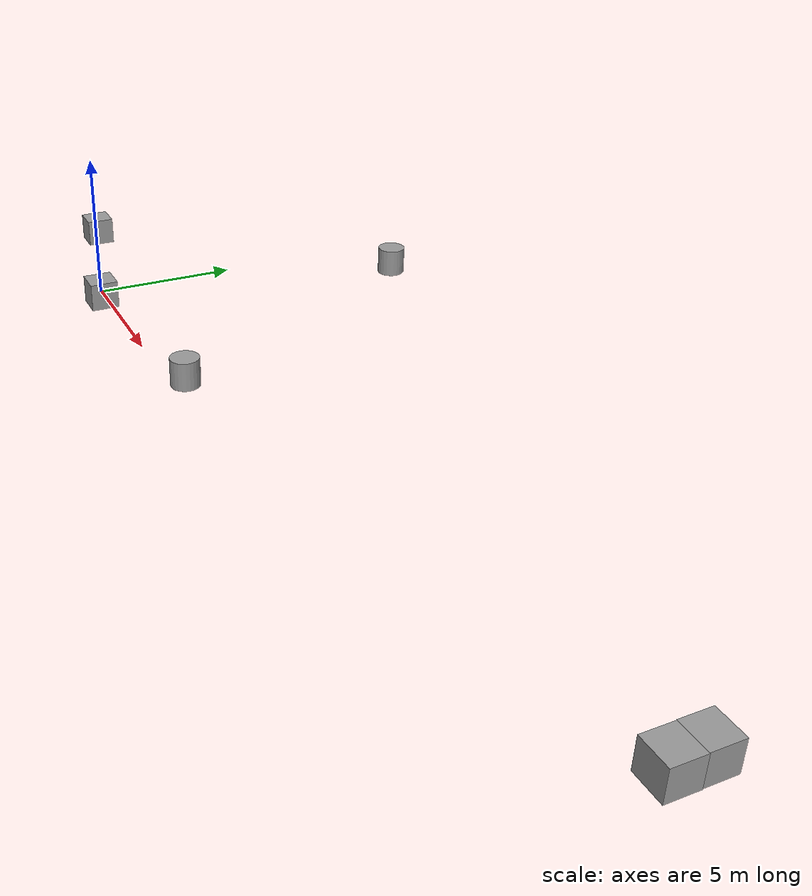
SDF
<?xml version='1.0'?>
<sdf version='1.6'>
  <model name='ex1.model'>
    <link name='link'>
      <inertial>
        <mass>1</mass>
        <inertia>
          <ixx>0.166667</ixx>
          <ixy>0</ixy>
          <ixz>0</ixz>
          <iyy>0.166667</iyy>
          <iyz>0</iyz>
          <izz>0.166667</izz>
        </inertia>
      </inertial>
      <self_collide>0</self_collide>
      <enable_wind>0</enable_wind>
      <kinematic>0</kinematic>
      <pose frame=''>0 0 0 0 -0 0</pose>
      <visual name='visual'>
        <geometry>
          <box>
            <size>1 1 1</size>
          </box>
        </geometry>
        <material>
          <script>
            <name>Gazebo/Grey</name>
            <uri>file://media/materials/scripts/gazebo.material</uri>
          </script>
        </material>
        <pose frame=''>0 0 0 0 -0 0</pose>
        <transparency>0</transparency>
        <cast_shadows>1</cast_shadows>
      </visual>
      <collision name='collision'>
        <laser_retro>0</laser_retro>
        <max_contacts>10</max_contacts>
        <pose frame=''>0 0 0 0 -0 0</pose>
        <geometry>
          <box>
            <size>1 1 1</size>
          </box>
        </geometry>
        <surface>
          <friction>
            <ode>
              <mu>1</mu>
              <mu2>1</mu2>
              <fdir1>0 0 0</fdir1>
              <slip1>0</slip1>
              <slip2>0</slip2>
            </ode>
            <torsional>
              <coefficient>1</coefficient>
              <patch_radius>0</patch_radius>
              <surface_radius>0</surface_radius>
              <use_patch_radius>1</use_patch_radius>
              <ode>
                <slip>0</slip>
              </ode>
            </torsional>
          </friction>
          <bounce>
            <restitution_coefficient>0</restitution_coefficient>
            <threshold>1e+06</threshold>
          </bounce>
          <contact>
            <collide_without_contact>0</collide_without_contact>
            <collide_without_contact_bitmask>1</collide_without_contact_bitmask>
            <collide_bitmask>1</collide_bitmask>
            <ode>
              <soft_cfm>0</soft_cfm>
              <soft_erp>0.2</soft_erp>
              <kp>1e+13</kp>
              <kd>1</kd>
              <max_vel>0.01</max_vel>
              <min_depth>0</min_depth>
            </ode>
            <bullet>
              <split_impulse>1</split_impulse>
              <split_impulse_penetration_threshold>-0.01</split_impulse_penetration_threshold>
              <soft_cfm>0</soft_cfm>
              <soft_erp>0.2</soft_erp>
              <kp>1e+13</kp>
              <kd>1</kd>
            </bullet>
          </contact>
        </surface>
      </collision>
    </link>
    <link name='link_0'>
      <inertial>
        <mass>1</mass>
        <inertia>
          <ixx>0.145833</ixx>
          <ixy>0</ixy>
          <ixz>0</ixz>
          <iyy>0.145833</iyy>
          <iyz>0</iyz>
          <izz>0.125</izz>
        </inertia>
      </inertial>
      <pose frame=''>1.61294 11.2922 0 0 -0 0</pose>
      <self_collide>0</self_collide>
      <enable_wind>0</enable_wind>
      <kinematic>0</kinematic>
      <visual name='visual'>
        <pose frame=''>0 0 0 0 -0 0</pose>
        <geometry>
          <cylinder>
            <radius>0.5</radius>
            <length>1</length>
          </cylinder>
        </geometry>
        <material>
          <lighting>1</lighting>
          <script>
            <uri>file://media/materials/scripts/gazebo.material</uri>
            <name>Gazebo/Grey</name>
          </script>
        </material>
        <transparency>0</transparency>
        <cast_shadows>1</cast_shadows>
      </visual>
      <collision name='collision'>
        <laser_retro>0</laser_retro>
        <max_contacts>10</max_contacts>
        <pose frame=''>0 0 0 0 -0 0</pose>
        <geometry>
          <cylinder>
            <radius>0.5</radius>
            <length>1</length>
          </cylinder>
        </geometry>
        <surface>
          <friction>
            <ode>
              <mu>1</mu>
              <mu2>1</mu2>
              <fdir1>0 0 0</fdir1>
              <slip1>0</slip1>
              <slip2>0</slip2>
            </ode>
            <torsional>
              <coefficient>1</coefficient>
              <patch_radius>0</patch_radius>
              <surface_radius>0</surface_radius>
              <use_patch_radius>1</use_patch_radius>
              <ode>
                <slip>0</slip>
              </ode>
            </torsional>
          </friction>
          <bounce>
            <restitution_coefficient>0</restitution_coefficient>
            <threshold>1e+06</threshold>
          </bounce>
          <contact>
            <collide_without_contact>0</collide_without_contact>
            <collide_without_contact_bitmask>1</collide_without_contact_bitmask>
            <collide_bitmask>1</collide_bitmask>
            <ode>
              <soft_cfm>0</soft_cfm>
              <soft_erp>0.2</soft_erp>
              <kp>1e+13</kp>
              <kd>1</kd>
              <max_vel>0.01</max_vel>
              <min_depth>0</min_depth>
            </ode>
            <bullet>
              <split_impulse>1</split_impulse>
              <split_impulse_penetration_threshold>-0.01</split_impulse_penetration_threshold>
              <soft_cfm>0</soft_cfm>
              <soft_erp>0.2</soft_erp>
              <kp>1e+13</kp>
              <kd>1</kd>
            </bullet>
          </contact>
        </surface>
      </collision>
    </link>
    <link name='link_1'>
      <inertial>
        <mass>1</mass>
        <inertia>
          <ixx>0.145833</ixx>
          <ixy>0</ixy>
          <ixz>0</ixz>
          <iyy>0.145833</iyy>
          <iyz>0</iyz>
          <izz>0.125</izz>
        </inertia>
      </inertial>
      <pose frame=''>7.25456 0.758957 0 0 -0 0</pose>
      <self_collide>0</self_collide>
      <enable_wind>0</enable_wind>
      <kinematic>0</kinematic>
      <visual name='visual'>
        <pose frame=''>0 0 0 0 -0 0</pose>
        <geometry>
          <cylinder>
            <radius>0.5</radius>
            <length>1</length>
          </cylinder>
        </geometry>
        <material>
          <lighting>1</lighting>
          <script>
            <uri>file://media/materials/scripts/gazebo.material</uri>
            <name>Gazebo/Grey</name>
          </script>
        </material>
        <transparency>0</transparency>
        <cast_shadows>1</cast_shadows>
      </visual>
      <collision name='collision'>
        <laser_retro>0</laser_retro>
        <max_contacts>10</max_contacts>
        <pose frame=''>0 0 0 0 -0 0</pose>
        <geometry>
          <cylinder>
            <radius>0.5</radius>
            <length>1</length>
          </cylinder>
        </geometry>
        <surface>
          <friction>
            <ode>
              <mu>1</mu>
              <mu2>1</mu2>
              <fdir1>0 0 0</fdir1>
              <slip1>0</slip1>
              <slip2>0</slip2>
            </ode>
            <torsional>
              <coefficient>1</coefficient>
              <patch_radius>0</patch_radius>
              <surface_radius>0</surface_radius>
              <use_patch_radius>1</use_patch_radius>
              <ode>
                <slip>0</slip>
              </ode>
            </torsional>
          </friction>
          <bounce>
            <restitution_coefficient>0</restitution_coefficient>
            <threshold>1e+06</threshold>
          </bounce>
          <contact>
            <collide_without_contact>0</collide_without_contact>
            <collide_without_contact_bitmask>1</collide_without_contact_bitmask>
            <collide_bitmask>1</collide_bitmask>
            <ode>
              <soft_cfm>0</soft_cfm>
              <soft_erp>0.2</soft_erp>
              <kp>1e+13</kp>
              <kd>1</kd>
              <max_vel>0.01</max_vel>
              <min_depth>0</min_depth>
            </ode>
            <bullet>
              <split_impulse>1</split_impulse>
              <split_impulse_penetration_threshold>-0.01</split_impulse_penetration_threshold>
              <soft_cfm>0</soft_cfm>
              <soft_erp>0.2</soft_erp>
              <kp>1e+13</kp>
              <kd>1</kd>
            </bullet>
          </contact>
        </surface>
      </collision>
    </link>
    <link name='link_2'>
      <inertial>
        <mass>1</mass>
        <inertia>
          <ixx>0.166667</ixx>
          <ixy>0</ixy>
          <ixz>0</ixz>
          <iyy>0.166667</iyy>
          <iyz>0</iyz>
          <izz>0.166667</izz>
        </inertia>
      </inertial>
      <pose frame=''>27.1518 5.11795 0 0 -0 0</pose>
      <self_collide>0</self_collide>
      <enable_wind>0</enable_wind>
      <kinematic>0</kinematic>
      <visual name='visual'>
        <pose frame=''>0 0 0 0 -0 0</pose>
        <geometry>
          <box>
            <size>1 1 1</size>
          </box>
        </geometry>
        <material>
          <lighting>1</lighting>
          <script>
            <uri>file://media/materials/scripts/gazebo.material</uri>
            <name>Gazebo/Grey</name>
          </script>
        </material>
        <transparency>0</transparency>
        <cast_shadows>1</cast_shadows>
      </visual>
      <collision name='collision'>
        <laser_retro>0</laser_retro>
        <max_contacts>10</max_contacts>
        <pose frame=''>0 0 0 0 -0 0</pose>
        <geometry>
          <box>
            <size>1 1 1</size>
          </box>
        </geometry>
        <surface>
          <friction>
            <ode>
              <mu>1</mu>
              <mu2>1</mu2>
              <fdir1>0 0 0</fdir1>
              <slip1>0</slip1>
              <slip2>0</slip2>
            </ode>
            <torsional>
              <coefficient>1</coefficient>
              <patch_radius>0</patch_radius>
              <surface_radius>0</surface_radius>
              <use_patch_radius>1</use_patch_radius>
              <ode>
                <slip>0</slip>
              </ode>
            </torsional>
          </friction>
          <bounce>
            <restitution_coefficient>0</restitution_coefficient>
            <threshold>1e+06</threshold>
          </bounce>
          <contact>
            <collide_without_contact>0</collide_without_contact>
            <collide_without_contact_bitmask>1</collide_without_contact_bitmask>
            <collide_bitmask>1</collide_bitmask>
            <ode>
              <soft_cfm>0</soft_cfm>
              <soft_erp>0.2</soft_erp>
              <kp>1e+13</kp>
              <kd>1</kd>
              <max_vel>0.01</max_vel>
              <min_depth>0</min_depth>
            </ode>
            <bullet>
              <split_impulse>1</split_impulse>
              <split_impulse_penetration_threshold>-0.01</split_impulse_penetration_threshold>
              <soft_cfm>0</soft_cfm>
              <soft_erp>0.2</soft_erp>
              <kp>1e+13</kp>
              <kd>1</kd>
            </bullet>
          </contact>
        </surface>
      </collision>
    </link>
    <link name='link_3'>
      <inertial>
        <mass>1</mass>
        <inertia>
          <ixx>0.166667</ixx>
          <ixy>0</ixy>
          <ixz>0</ixz>
          <iyy>0.166667</iyy>
          <iyz>0</iyz>
          <izz>0.166667</izz>
        </inertia>
      </inertial>
      <pose frame=''>27.1665 4.13017 0 0 -0 0</pose>
      <self_collide>0</self_collide>
      <enable_wind>0</enable_wind>
      <kinematic>0</kinematic>
      <visual name='visual'>
        <pose frame=''>0 0 0 0 -0 0</pose>
        <geometry>
          <box>
            <size>1 1 1</size>
          </box>
        </geometry>
        <material>
          <lighting>1</lighting>
          <script>
            <uri>file://media/materials/scripts/gazebo.material</uri>
            <name>Gazebo/Grey</name>
          </script>
        </material>
        <transparency>0</transparency>
        <cast_shadows>1</cast_shadows>
      </visual>
      <collision name='collision'>
        <laser_retro>0</laser_retro>
        <max_contacts>10</max_contacts>
        <pose frame=''>0 0 0 0 -0 0</pose>
        <geometry>
          <box>
            <size>1 1 1</size>
          </box>
        </geometry>
        <surface>
          <friction>
            <ode>
              <mu>1</mu>
              <mu2>1</mu2>
              <fdir1>0 0 0</fdir1>
              <slip1>0</slip1>
              <slip2>0</slip2>
            </ode>
            <torsional>
              <coefficient>1</coefficient>
              <patch_radius>0</patch_radius>
              <surface_radius>0</surface_radius>
              <use_patch_radius>1</use_patch_radius>
              <ode>
                <slip>0</slip>
              </ode>
            </torsional>
          </friction>
          <bounce>
            <restitution_coefficient>0</restitution_coefficient>
            <threshold>1e+06</threshold>
          </bounce>
          <contact>
            <collide_without_contact>0</collide_without_contact>
            <collide_without_contact_bitmask>1</collide_without_contact_bitmask>
            <collide_bitmask>1</collide_bitmask>
            <ode>
              <soft_cfm>0</soft_cfm>
              <soft_erp>0.2</soft_erp>
              <kp>1e+13</kp>
              <kd>1</kd>
              <max_vel>0.01</max_vel>
              <min_depth>0</min_depth>
            </ode>
            <bullet>
              <split_impulse>1</split_impulse>
              <split_impulse_penetration_threshold>-0.01</split_impulse_penetration_threshold>
              <soft_cfm>0</soft_cfm>
              <soft_erp>0.2</soft_erp>
              <kp>1e+13</kp>
              <kd>1</kd>
            </bullet>
          </contact>
        </surface>
      </collision>
    </link>
    <link name='link_6'>
      <inertial>
        <mass>1</mass>
        <inertia>
          <ixx>0.166667</ixx>
          <ixy>0</ixy>
          <ixz>0</ixz>
          <iyy>0.166667</iyy>
          <iyz>0</iyz>
          <izz>0.166667</izz>
        </inertia>
      </inertial>
      <pose frame=''>-6.348 1.63279 0 0 -0 0</pose>
      <self_collide>0</self_collide>
      <enable_wind>0</enable_wind>
      <kinematic>0</kinematic>
      <visual name='visual'>
        <pose frame=''>0 0 0 0 -0 0</pose>
        <geometry>
          <box>
            <size>1 1 1</size>
          </box>
        </geometry>
        <material>
          <lighting>1</lighting>
          <script>
            <uri>file://media/materials/scripts/gazebo.material</uri>
            <name>Gazebo/Grey</name>
          </script>
        </material>
        <transparency>0</transparency>
        <cast_shadows>1</cast_shadows>
      </visual>
      <collision name='collision'>
        <laser_retro>0</laser_retro>
        <max_contacts>10</max_contacts>
        <pose frame=''>0 0 0 0 -0 0</pose>
        <geometry>
          <box>
            <size>1 1 1</size>
          </box>
        </geometry>
        <surface>
          <friction>
            <ode>
              <mu>1</mu>
              <mu2>1</mu2>
              <fdir1>0 0 0</fdir1>
              <slip1>0</slip1>
              <slip2>0</slip2>
            </ode>
            <torsional>
              <coefficient>1</coefficient>
              <patch_radius>0</patch_radius>
              <surface_radius>0</surface_radius>
              <use_patch_radius>1</use_patch_radius>
              <ode>
                <slip>0</slip>
              </ode>
            </torsional>
          </friction>
          <bounce>
            <restitution_coefficient>0</restitution_coefficient>
            <threshold>1e+06</threshold>
          </bounce>
          <contact>
            <collide_without_contact>0</collide_without_contact>
            <collide_without_contact_bitmask>1</collide_without_contact_bitmask>
            <collide_bitmask>1</collide_bitmask>
            <ode>
              <soft_cfm>0</soft_cfm>
              <soft_erp>0.2</soft_erp>
              <kp>1e+13</kp>
              <kd>1</kd>
              <max_vel>0.01</max_vel>
              <min_depth>0</min_depth>
            </ode>
            <bullet>
              <split_impulse>1</split_impulse>
              <split_impulse_penetration_threshold>-0.01</split_impulse_penetration_threshold>
              <soft_cfm>0</soft_cfm>
              <soft_erp>0.2</soft_erp>
              <kp>1e+13</kp>
              <kd>1</kd>
            </bullet>
          </contact>
        </surface>
      </collision>
    </link>
    <static>0</static>
    <allow_auto_disable>1</allow_auto_disable>
  </model>
</sdf>
